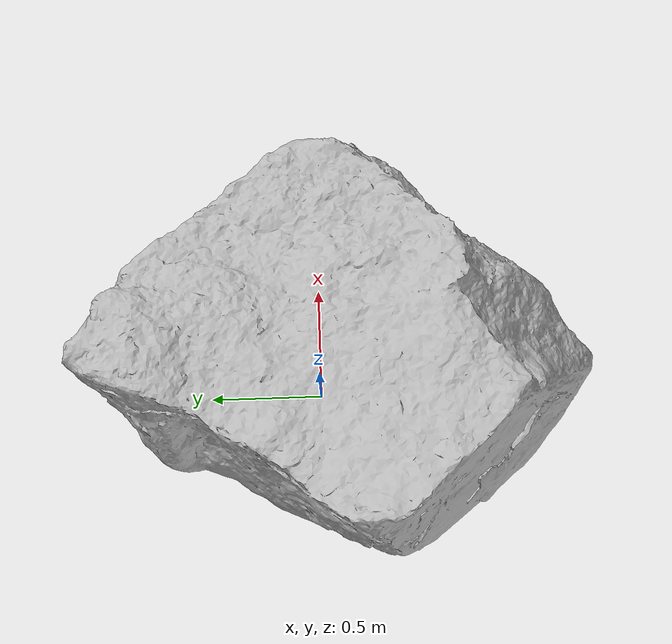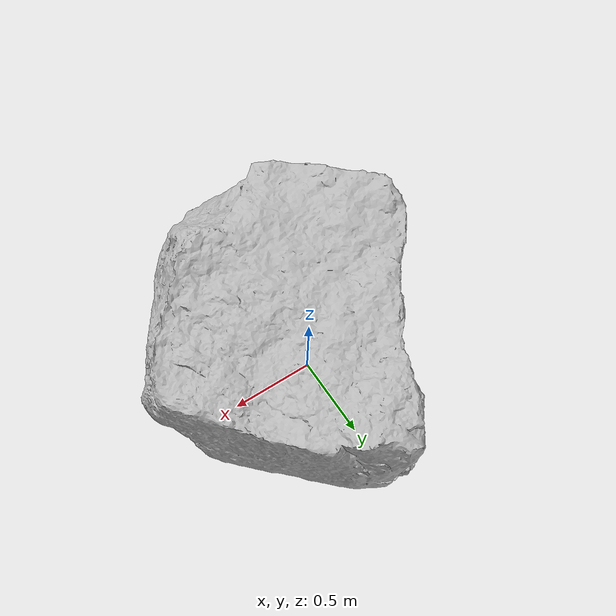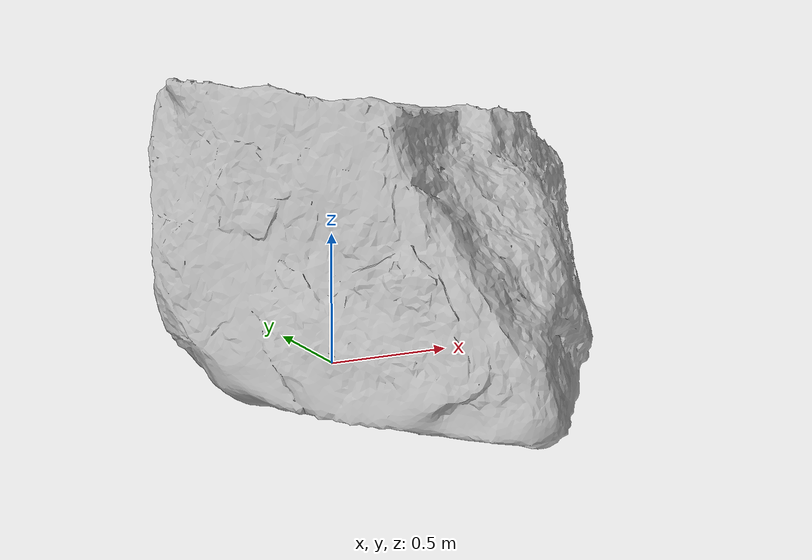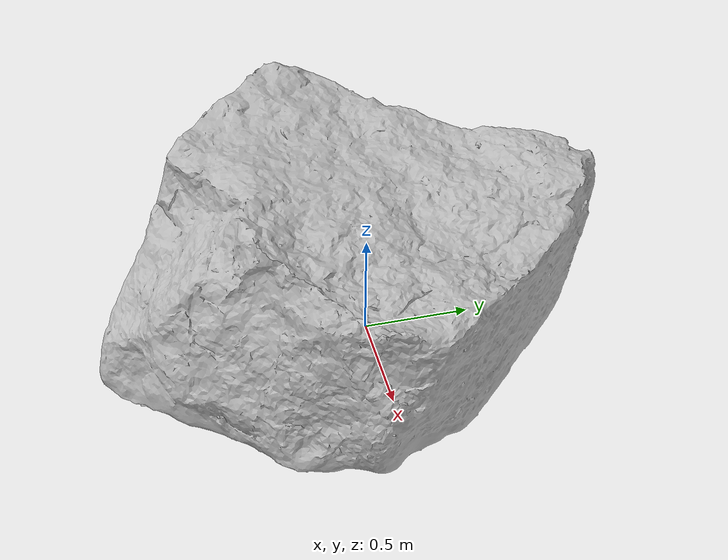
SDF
<?xml version='1.0' encoding='utf-8'?>
<sdf version="1.9">

  <model name="temp_fall_Rock_121">

    <static>false</static>

    <link name="rock_link">

      <visual name="visual">
        <geometry>
          <mesh>
            <uri>meshes/rock_1.stl</uri>
          </mesh>
        </geometry>
      </visual>

      <collision name="collision">
        <geometry>
          <mesh>
            <uri>meshes/rock_1.stl</uri>
          </mesh>
        </geometry>
      </collision>

    <inertial><mass>5.0</mass><inertia><ixx>0.1</ixx><ixy>0.0</ixy><ixz>0.0</ixz><iyy>0.1</iyy><iyz>0.0</iyz><izz>0.1</izz></inertia></inertial></link>

  </model>

</sdf>
